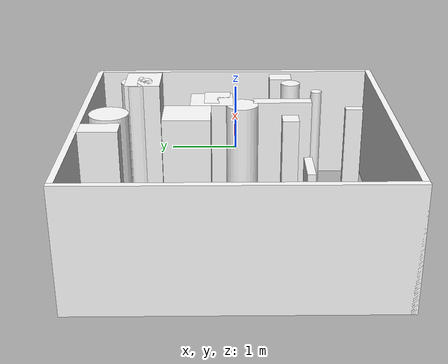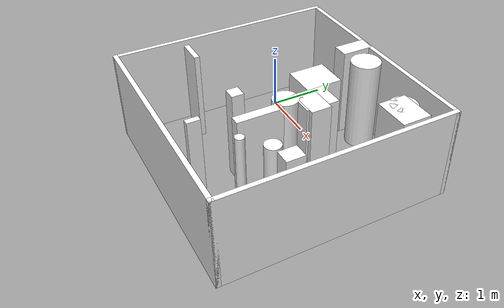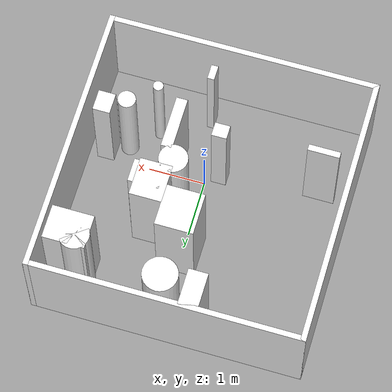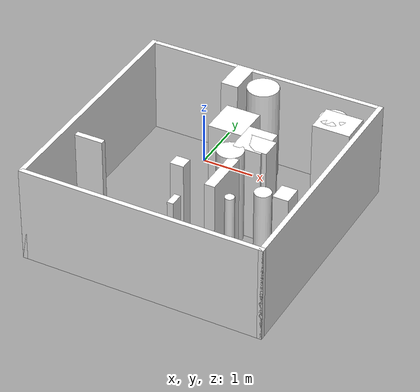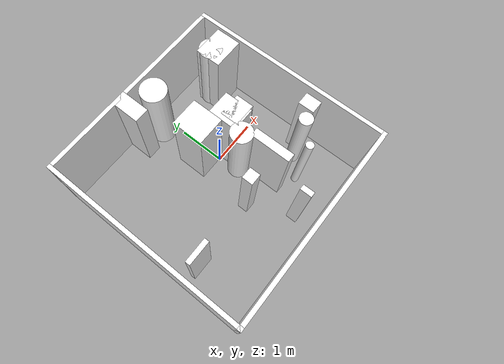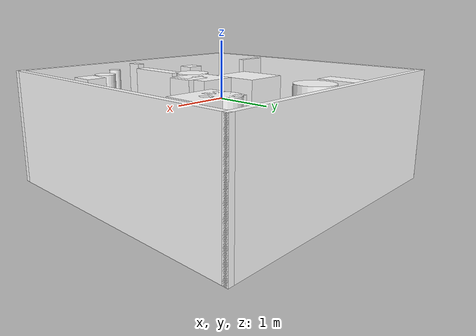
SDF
<?xml version="1.0"?>
<sdf version="1.7">
    <world name="hippo_world">

        <physics name="1ms" type="ode">
            <max_step_size>0.004</max_step_size>
            <real_time_factor>1.0</real_time_factor>
        </physics>

        <!-- required for camera sensor -->
        <plugin filename="gz-sim-sensors-system" name="gz::sim::systems::Sensors">
            <render_engine>ogre2</render_engine>
        </plugin>

        <gui fullscreen="0">

            <plugin filename="MinimalScene" name="3D View">
                <gz-gui>
                    <title>3D View</title>
                    <property type="bool" key="showTitleBar">false</property>
                    <property type="string" key="state">docked</property>
                </gz-gui>
                <engine>ogre2</engine>
                <scene>scene</scene>
                <ambient_light>1.0 1.0 1.0</ambient_light>
                <background_color>1.0 1.0 1.0</background_color>
                <camera_pose>8.3 7 7.8 0 0.5 -2.4</camera_pose>
                <camera_clip>
                    <near>0.01</near>
                    <far>100</far>
                </camera_clip>
                <horizontal_fov>60</horizontal_fov>
            </plugin>
            <plugin filename="EntityContextMenuPlugin" name="Entity context menu">
                <gz-gui>
                    <property key="state" type="string">floating</property>
                    <property key="width" type="double">5</property>
                    <property key="height" type="double">5</property>
                    <property key="showTitleBar" type="bool">false</property>
                </gz-gui>
            </plugin>
            <plugin filename="GzSceneManager" name="Scene Manager">
                <gz-gui>
                    <property key="resizable" type="bool">false</property>
                    <property key="width" type="double">5</property>
                    <property key="height" type="double">5</property>
                    <property key="state" type="string">floating</property>
                    <property key="showTitleBar" type="bool">false</property>
                </gz-gui>
            </plugin>
            <plugin filename="InteractiveViewControl" name="Interactive view control">
                <gz-gui>
                    <property key="resizable" type="bool">false</property>
                    <property key="width" type="double">5</property>
                    <property key="height" type="double">5</property>
                    <property key="state" type="string">floating</property>
                    <property key="showTitleBar" type="bool">false</property>
                </gz-gui>
            </plugin>
            <plugin filename="CameraTracking" name="Camera Tracking">
                <gz-gui>
                    <property key="resizable" type="bool">false</property>
                    <property key="width" type="double">5</property>
                    <property key="height" type="double">5</property>
                    <property key="state" type="string">floating</property>
                    <property key="showTitleBar" type="bool">false</property>
                </gz-gui>
            </plugin>
            <plugin filename="MarkerManager" name="Marker manager">
                <gz-gui>
                    <property key="resizable" type="bool">false</property>
                    <property key="width" type="double">5</property>
                    <property key="height" type="double">5</property>
                    <property key="state" type="string">floating</property>
                    <property key="showTitleBar" type="bool">false</property>
                </gz-gui>
            </plugin>
            <plugin filename="SelectEntities" name="Select Entities">
                <gz-gui>
                    <anchors target="Select entities">
                        <line own="right" target="right" />
                        <line own="top" target="top" />
                    </anchors>
                    <property key="resizable" type="bool">false</property>
                    <property key="width" type="double">5</property>
                    <property key="height" type="double">5</property>
                    <property key="state" type="string">floating</property>
                    <property key="showTitleBar" type="bool">false</property>
                </gz-gui>
            </plugin>
            <plugin filename="VisualizationCapabilities" name="Visualization Capabilities">
                <gz-gui>
                    <property key="resizable" type="bool">false</property>
                    <property key="width" type="double">5</property>
                    <property key="height" type="double">5</property>
                    <property key="state" type="string">floating</property>
                    <property key="showTitleBar" type="bool">false</property>
                </gz-gui>
            </plugin>

            <plugin filename="Spawn" name="Spawn Entities">
                <gz-gui>
                    <anchors target="Select entities">
                        <line own="right" target="right" />
                        <line own="top" target="top" />
                    </anchors>
                    <property key="resizable" type="bool">false</property>
                    <property key="width" type="double">5</property>
                    <property key="height" type="double">5</property>
                    <property key="state" type="string">floating</property>
                    <property key="showTitleBar" type="bool">false</property>
                </gz-gui>
            </plugin>

            <!-- World control -->
            <plugin filename="WorldControl" name="World control">
                <gz-gui>
                    <title>World control</title>
                    <property type="bool" key="showTitleBar">false</property>
                    <property type="bool" key="resizable">false</property>
                    <property type="double" key="height">72</property>
                    <property type="double" key="width">121</property>
                    <property type="double" key="z">1</property>

                    <property type="string" key="state">floating</property>
                    <anchors target="3D View">
                        <line own="left" target="left" />
                        <line own="bottom" target="bottom" />
                    </anchors>
                </gz-gui>

                <play_pause>true</play_pause>
                <step>true</step>
                <start_paused>true</start_paused>
                <use_event>true</use_event>

            </plugin>

            <!-- World statistics -->
            <plugin filename="WorldStats" name="World stats">
                <gz-gui>
                    <title>World stats</title>
                    <property type="bool" key="showTitleBar">false</property>
                    <property type="bool" key="resizable">false</property>
                    <property type="double" key="height">110</property>
                    <property type="double" key="width">290</property>
                    <property type="double" key="z">1</property>

                    <property type="string" key="state">floating</property>
                    <anchors target="3D View">
                        <line own="right" target="right" />
                        <line own="bottom" target="bottom" />
                    </anchors>
                </gz-gui>

                <sim_time>true</sim_time>
                <real_time>true</real_time>
                <real_time_factor>true</real_time_factor>
                <iterations>true</iterations>
            </plugin>
            <!-- Translate / rotate -->
            <plugin filename="TransformControl" name="Transform control">
                <gz-gui>
                    <property key="resizable" type="bool">false</property>
                    <property key="x" type="double">0</property>
                    <property key="y" type="double">0</property>
                    <property key="width" type="double">250</property>
                    <property key="height" type="double">50</property>
                    <property key="state" type="string">floating</property>
                    <property key="showTitleBar" type="bool">false</property>
                    <property key="cardBackground" type="string">#777777</property>
                </gz-gui>
            </plugin>

            <!-- Inspector -->
            <plugin filename="ComponentInspector" name="Component inspector">
                <gz-gui>
                    <property type="string" key="state">docked</property>
                </gz-gui>
            </plugin>

            <plugin filename="EntityTree" name="Entity tree">
                <gz-gui>
                    <property type="string" key="state">docked</property>
                </gz-gui>
            </plugin>
        </gui>

        <plugin filename="libgz-sim-physics-system.so" name="gz::sim::systems::Physics"></plugin>
        <plugin filename="libgz-sim-user-commands-system.so" name="gz::sim::systems::UserCommands"></plugin>
        <plugin filename="libgz-sim-scene-broadcaster-system.so" name="gz::sim::systems::SceneBroadcaster"></plugin>
        <plugin filename="libgz-sim-imu-system.so" name="gz::sim::systems::Imu"></plugin>
        <!-- FT Plugin -->
        <plugin filename="gz-sim-forcetorque-system" name="gz::sim::systems::ForceTorque"/>

        <light type="directional" name="sun1">
            <cast_shadows>true</cast_shadows>
            <pose>0 0 10 0 0 0</pose>
            <diffuse>1 1 1 1</diffuse>
            <specular>1 1 1 1</specular>
            <ambient>1 1 1 1</ambient>
            <attenuation>
                <range>1000</range>
                <constant>0.9</constant>
                <linear>0.01</linear>
                <quadratic>0.001</quadratic>
            </attenuation>
            <direction>0.5 0.5 -0.9</direction>
        </light>

        <light type="directional" name="sun2">
            <cast_shadows>true</cast_shadows>
            <pose>0 0 10 0 0 0</pose>
            <diffuse>1 1 1 1</diffuse>
            <specular>1 1 1 1</specular>
            <ambient>1 1 1 1</ambient>
            <attenuation>
                <range>1000</range>
                <constant>0.9</constant>
                <linear>0.01</linear>
                <quadratic>0.001</quadratic>
            </attenuation>
            <direction>-0.5 0.5 -0.9</direction>
        </light>

        <light type="directional" name="sun3">
            <cast_shadows>true</cast_shadows>
            <pose>0 0 10 0 0 0</pose>
            <diffuse>1 1 1 1</diffuse>
            <specular>1 1 1 1</specular>
            <ambient>1 1 1 1</ambient>
            <attenuation>
                <range>1000</range>
                <constant>0.9</constant>
                <linear>0.01</linear>
                <quadratic>0.001</quadratic>
            </attenuation>
            <direction>0.5 0.1 0.9</direction>
        </light>

        <!-- Test obstacles -->

        <model name="box_obstacle_1">
            <static>true</static>
            <pose>0.961475 0.30113 -0.5 0 0 0</pose>
            <link name="link">
                <collision name="collision">
                    <geometry><box><size>0.560695 0.429589 2</size></box></geometry>
                </collision>
                <visual name="visual">
                    <geometry><box><size>0.560695 0.429589 2</size></box></geometry>
                    <material>
                        <ambient>1 1 1 1</ambient>
                        <diffuse>1 1 1 1</diffuse>
                        <specular>1 1 1 1</specular>
                        <pbr>
                            <metal>
                                <metalness>1</metalness>
                                <roughness>0.5</roughness>
                            </metal>
                        </pbr>
                    </material>
                </visual>
            </link>
        </model>

        <model name="box_obstacle_2">
            <static>true</static>
            <pose>0.853529 0.393447 -0.5 0 0 0</pose>
            <link name="link">
                <collision name="collision">
                    <geometry><box><size>0.588377 0.702077 2</size></box></geometry>
                </collision>
                <visual name="visual">
                    <geometry><box><size>0.588377 0.702077 2</size></box></geometry>
                    <material>
                        <ambient>1 1 1 1</ambient>
                        <diffuse>1 1 1 1</diffuse>
                        <specular>1 1 1 1</specular>
                        <pbr>
                            <metal>
                                <metalness>1</metalness>
                                <roughness>0.5</roughness>
                            </metal>
                        </pbr>
                    </material>
                </visual>
            </link>
        </model>

        <model name="box_obstacle_3">
            <static>true</static>
            <pose>0.405571 -1.90769 -0.5 0 0 0</pose>
            <link name="link">
                <collision name="collision">
                    <geometry><box><size>0.127775 0.2756 2</size></box></geometry>
                </collision>
                <visual name="visual">
                    <geometry><box><size>0.127775 0.2756 2</size></box></geometry>
                    <material>
                        <ambient>1 1 1 1</ambient>
                        <diffuse>1 1 1 1</diffuse>
                        <specular>1 1 1 1</specular>
                        <pbr>
                            <metal>
                                <metalness>1</metalness>
                                <roughness>0.5</roughness>
                            </metal>
                        </pbr>
                    </material>
                </visual>
            </link>
        </model>

        <model name="box_obstacle_4">
            <static>true</static>
            <pose>2.07967 -0.81465 -0.5 0 0 0</pose>
            <link name="link">
                <collision name="collision">
                    <geometry><box><size>0.31615 0.382905 2</size></box></geometry>
                </collision>
                <visual name="visual">
                    <geometry><box><size>0.31615 0.382905 2</size></box></geometry>
                    <material>
                        <ambient>1 1 1 1</ambient>
                        <diffuse>1 1 1 1</diffuse>
                        <specular>1 1 1 1</specular>
                        <pbr>
                            <metal>
                                <metalness>1</metalness>
                                <roughness>0.5</roughness>
                            </metal>
                        </pbr>
                    </material>
                </visual>
            </link>
        </model>

        <model name="box_obstacle_5">
            <static>true</static>
            <pose>0.777908 -0.773626 -0.5 0 0 0</pose>
            <link name="link">
                <collision name="collision">
                    <geometry><box><size>0.208989 0.964838 2</size></box></geometry>
                </collision>
                <visual name="visual">
                    <geometry><box><size>0.208989 0.964838 2</size></box></geometry>
                    <material>
                        <ambient>1 1 1 1</ambient>
                        <diffuse>1 1 1 1</diffuse>
                        <specular>1 1 1 1</specular>
                        <pbr>
                            <metal>
                                <metalness>1</metalness>
                                <roughness>0.5</roughness>
                            </metal>
                        </pbr>
                    </material>
                </visual>
            </link>
        </model>

        <model name="box_obstacle_6">
            <static>true</static>
            <pose>-1.88758 -0.979398 -0.5 0 0 0</pose>
            <link name="link">
                <collision name="collision">
                    <geometry><box><size>0.578973 0.114956 2</size></box></geometry>
                </collision>
                <visual name="visual">
                    <geometry><box><size>0.578973 0.114956 2</size></box></geometry>
                    <material>
                        <ambient>1 1 1 1</ambient>
                        <diffuse>1 1 1 1</diffuse>
                        <specular>1 1 1 1</specular>
                        <pbr>
                            <metal>
                                <metalness>1</metalness>
                                <roughness>0.5</roughness>
                            </metal>
                        </pbr>
                    </material>
                </visual>
            </link>
        </model>

        <model name="box_obstacle_7">
            <static>true</static>
            <pose>-0.420024 2.14131 -0.5 0 0 0</pose>
            <link name="link">
                <collision name="collision">
                    <geometry><box><size>0.360235 0.714887 2</size></box></geometry>
                </collision>
                <visual name="visual">
                    <geometry><box><size>0.360235 0.714887 2</size></box></geometry>
                    <material>
                        <ambient>1 1 1 1</ambient>
                        <diffuse>1 1 1 1</diffuse>
                        <specular>1 1 1 1</specular>
                        <pbr>
                            <metal>
                                <metalness>1</metalness>
                                <roughness>0.5</roughness>
                            </metal>
                        </pbr>
                    </material>
                </visual>
            </link>
        </model>

        <model name="box_obstacle_8">
            <static>true</static>
            <pose>0.213532 0.780731 -0.5 0 0 0</pose>
            <link name="link">
                <collision name="collision">
                    <geometry><box><size>0.70181 0.764958 2</size></box></geometry>
                </collision>
                <visual name="visual">
                    <geometry><box><size>0.70181 0.764958 2</size></box></geometry>
                    <material>
                        <ambient>1 1 1 1</ambient>
                        <diffuse>1 1 1 1</diffuse>
                        <specular>1 1 1 1</specular>
                        <pbr>
                            <metal>
                                <metalness>1</metalness>
                                <roughness>0.5</roughness>
                            </metal>
                        </pbr>
                    </material>
                </visual>
            </link>
        </model>

        <model name="box_obstacle_9">
            <static>true</static>
            <pose>1.95879 1.62755 -0.5 0 0 0</pose>
            <link name="link">
                <collision name="collision">
                    <geometry><box><size>0.765324 0.618862 2</size></box></geometry>
                </collision>
                <visual name="visual">
                    <geometry><box><size>0.765324 0.618862 2</size></box></geometry>
                    <material>
                        <ambient>1 1 1 1</ambient>
                        <diffuse>1 1 1 1</diffuse>
                        <specular>1 1 1 1</specular>
                        <pbr>
                            <metal>
                                <metalness>1</metalness>
                                <roughness>0.5</roughness>
                            </metal>
                        </pbr>
                    </material>
                </visual>
            </link>
        </model>

        <model name="box_obstacle_10">
            <static>true</static>
            <pose>-0.0487533 -0.851019 -0.5 0 0 0</pose>
            <link name="link">
                <collision name="collision">
                    <geometry><box><size>0.278076 0.257868 2</size></box></geometry>
                </collision>
                <visual name="visual">
                    <geometry><box><size>0.278076 0.257868 2</size></box></geometry>
                    <material>
                        <ambient>1 1 1 1</ambient>
                        <diffuse>1 1 1 1</diffuse>
                        <specular>1 1 1 1</specular>
                        <pbr>
                            <metal>
                                <metalness>1</metalness>
                                <roughness>0.5</roughness>
                            </metal>
                        </pbr>
                    </material>
                </visual>
            </link>
        </model>

        <model name="cylinder_obstacle_1">
            <static>true</static>
            <pose>1.81849 1.73379 -0.5 0 0 0</pose>
            <link name="link">
                <collision name="collision">
                    <geometry><cylinder><radius>0.27484</radius><length>2</length></cylinder></geometry>
                </collision>
                <visual name="visual">
                    <geometry><cylinder><radius>0.27484</radius><length>2</length></cylinder></geometry>
                    <material>
                        <ambient>1 1 1 1</ambient>
                        <diffuse>1 1 1 1</diffuse>
                        <specular>1 1 1 1</specular>
                        <pbr>
                            <metal>
                                <metalness>1</metalness>
                                <roughness>0.5</roughness>
                            </metal>
                        </pbr>
                    </material>
                </visual>
            </link>
        </model>

        <model name="cylinder_obstacle_2">
            <static>true</static>
            <pose>1.256 -1.38018 -0.5 0 0 0</pose>
            <link name="link">
                <collision name="collision">
                    <geometry><cylinder><radius>0.0934505</radius><length>2</length></cylinder></geometry>
                </collision>
                <visual name="visual">
                    <geometry><cylinder><radius>0.0934505</radius><length>2</length></cylinder></geometry>
                    <material>
                        <ambient>1 1 1 1</ambient>
                        <diffuse>1 1 1 1</diffuse>
                        <specular>1 1 1 1</specular>
                        <pbr>
                            <metal>
                                <metalness>1</metalness>
                                <roughness>0.5</roughness>
                            </metal>
                        </pbr>
                    </material>
                </visual>
            </link>
        </model>

        <model name="cylinder_obstacle_3">
            <static>true</static>
            <pose>0.597127 -0.106478 -0.5 0 0 0</pose>
            <link name="link">
                <collision name="collision">
                    <geometry><cylinder><radius>0.264558</radius><length>2</length></cylinder></geometry>
                </collision>
                <visual name="visual">
                    <geometry><cylinder><radius>0.264558</radius><length>2</length></cylinder></geometry>
                    <material>
                        <ambient>1 1 1 1</ambient>
                        <diffuse>1 1 1 1</diffuse>
                        <specular>1 1 1 1</specular>
                        <pbr>
                            <metal>
                                <metalness>1</metalness>
                                <roughness>0.5</roughness>
                            </metal>
                        </pbr>
                    </material>
                </visual>
            </link>
        </model>

        <model name="cylinder_obstacle_4">
            <static>true</static>
            <pose>1.7138 -0.972877 -0.5 0 0 0</pose>
            <link name="link">
                <collision name="collision">
                    <geometry><cylinder><radius>0.164655</radius><length>2</length></cylinder></geometry>
                </collision>
                <visual name="visual">
                    <geometry><cylinder><radius>0.164655</radius><length>2</length></cylinder></geometry>
                    <material>
                        <ambient>1 1 1 1</ambient>
                        <diffuse>1 1 1 1</diffuse>
                        <specular>1 1 1 1</specular>
                        <pbr>
                            <metal>
                                <metalness>1</metalness>
                                <roughness>0.5</roughness>
                            </metal>
                        </pbr>
                    </material>
                </visual>
            </link>
        </model>

        <model name="cylinder_obstacle_5">
            <static>true</static>
            <pose>0.193593 2.02016 -0.5 0 0 0</pose>
            <link name="link">
                <collision name="collision">
                    <geometry><cylinder><radius>0.319405</radius><length>2</length></cylinder></geometry>
                </collision>
                <visual name="visual">
                    <geometry><cylinder><radius>0.319405</radius><length>2</length></cylinder></geometry>
                    <material>
                        <ambient>1 1 1 1</ambient>
                        <diffuse>1 1 1 1</diffuse>
                        <specular>1 1 1 1</specular>
                        <pbr>
                            <metal>
                                <metalness>1</metalness>
                                <roughness>0.5</roughness>
                            </metal>
                        </pbr>
                    </material>
                </visual>
            </link>
        </model>

        <model name="wall_1">
            <static>true</static>
            <pose>-2.45 0 -0.5 0 0 0</pose>
            <link name="link">
                <collision name="collision">
                    <geometry><box><size>0.1 5 2</size></box></geometry>
                </collision>
                <visual name="visual">
                    <geometry><box><size>0.1 5 2</size></box></geometry>
                    <material>
                        <ambient>1 1 1 1</ambient>
                        <diffuse>1 1 1 1</diffuse>
                        <specular>1 1 1 1</specular>
                        <pbr>
                            <metal>
                                <metalness>1</metalness>
                                <roughness>0.5</roughness>
                            </metal>
                        </pbr>
                    </material>
                </visual>
            </link>
        </model>

        <model name="wall_2">
            <static>true</static>
            <pose>0 -2.45 -0.5 0 0 0</pose>
            <link name="link">
                <collision name="collision">
                    <geometry><box><size>5 0.1 2</size></box></geometry>
                </collision>
                <visual name="visual">
                    <geometry><box><size>5 0.1 2</size></box></geometry>
                    <material>
                        <ambient>1 1 1 1</ambient>
                        <diffuse>1 1 1 1</diffuse>
                        <specular>1 1 1 1</specular>
                        <pbr>
                            <metal>
                                <metalness>1</metalness>
                                <roughness>0.5</roughness>
                            </metal>
                        </pbr>
                    </material>
                </visual>
            </link>
        </model>

        <model name="wall_3">
            <static>true</static>
            <pose>2.45 0 -0.5 0 0 0</pose>
            <link name="link">
                <collision name="collision">
                    <geometry><box><size>0.1 5 2</size></box></geometry>
                </collision>
                <visual name="visual">
                    <geometry><box><size>0.1 5 2</size></box></geometry>
                    <material>
                        <ambient>1 1 1 1</ambient>
                        <diffuse>1 1 1 1</diffuse>
                        <specular>1 1 1 1</specular>
                        <pbr>
                            <metal>
                                <metalness>1</metalness>
                                <roughness>0.5</roughness>
                            </metal>
                        </pbr>
                    </material>
                </visual>
            </link>
        </model>

        <model name="wall_4">
            <static>true</static>
            <pose>0 2.45 -0.5 0 0 0</pose>
            <link name="link">
                <collision name="collision">
                    <geometry><box><size>5 0.1 2</size></box></geometry>
                </collision>
                <visual name="visual">
                    <geometry><box><size>5 0.1 2</size></box></geometry>
                    <material>
                        <ambient>1 1 1 1</ambient>
                        <diffuse>1 1 1 1</diffuse>
                        <specular>1 1 1 1</specular>
                        <pbr>
                            <metal>
                                <metalness>1</metalness>
                                <roughness>0.5</roughness>
                            </metal>
                        </pbr>
                    </material>
                </visual>
            </link>
        </model>
    </world>
</sdf>
